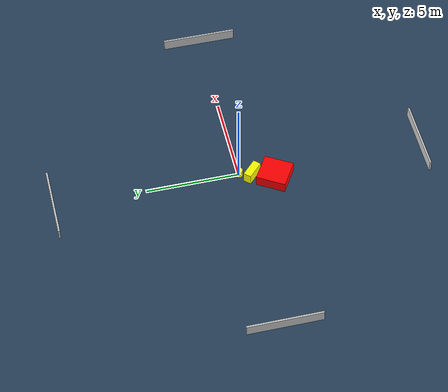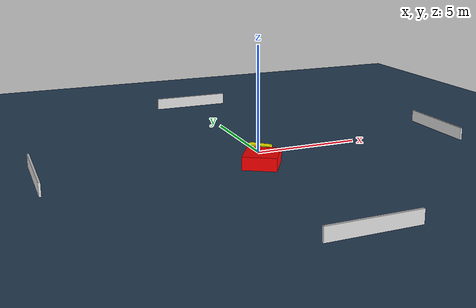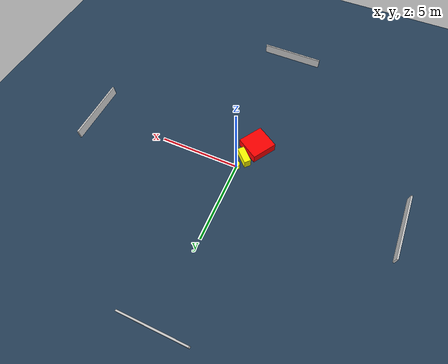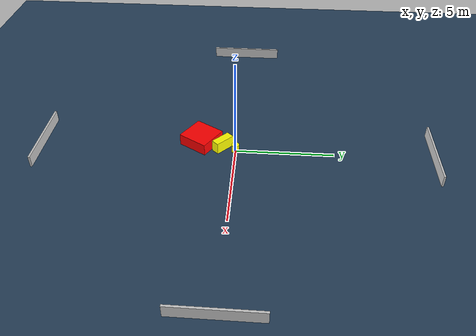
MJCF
<?xml version="1.0" ?>
<mujoco model="generated_environment">
  <option timestep="0.01" integrator="RK4" cone="elliptic"/>
  <default>
    <geom density="1"/>
  </default>
  <asset>
    <texture builtin="gradient" height="3072" name="skybox" rgb1="0.3 0.5 0.7" rgb2="0 0 0" type="skybox" width="512"/>
    <texture builtin="checker" height="300" name="groundplane" rgb1="0.2 0.3 0.4" rgb2="0.1 0.2 0.3" type="2d" width="300"/>
    <material name="groundplane" reflectance="0.2" texrepeat="5 5" texture="groundplane"/>
  </asset>
  <worldbody>
    <light dir="0 0 -1" directional="true" pos="0 0 1.5"/>
    <geom condim="3" friction="0.5 0.005 0.001" material="groundplane" name="floor" pos="0 0 0" size="0 0 0.05" type="plane"/>
    <body name="walls">
      <geom name="wall_1" condim="4" pos="-10.0 0.0 0.3" rgba="0.800000011920929 0.800000011920929 0.800000011920929 1.0" size="0.05 2.0 0.3" type="box"/>
      <geom name="wall_2" condim="4" pos="10.0 0.0 0.3" rgba="0.800000011920929 0.800000011920929 0.800000011920929 1.0" size="0.05 2.0 0.3" type="box"/>
      <geom name="wall_3" condim="4" pos="0.0 -10.0 0.3" rgba="0.800000011920929 0.800000011920929 0.800000011920929 1.0" size="2.0 0.05 0.3" type="box"/>
      <geom name="wall_4" condim="4" pos="0.0 10.0 0.3" rgba="0.800000011920929 0.800000011920929 0.800000011920929 1.0" size="2.0 0.05 0.3" type="box"/>
    </body>
    <body name="robot">
      <joint name="joint_x" type="slide" pos="0 0 0" axis="1 0 0"/>
      <joint name="joint_y" type="slide" pos="0 0 0" axis="0 1 0"/>
      <geom name="robot" type="cylinder" pos="0.0 0.0 0.2" size="0.2 0.2 0.0" mass="5.0" friction="1.0 0.005 0.0001" condim="4" rgba="1.0 1.0 0.0 1.0"/>
    </body>
    <body name="obstacle_1_movable">
      <geom name="obstacle_1_movable" condim="4" pos="-0.21056188534747003 -0.6670048370149719 0.3" euler="0 0 226.73366388487858" friction="0.0 0.005 0.001" rgba="1.0 1.0 0.0 1.0" size="0.21193796020297367 0.5273779748661176 0.3" type="box" mass="0.1"/>
      <joint type="free"/>
    </body>
    <body name="obstacle_2_static">
      <geom name="obstacle_2_static" condim="4" pos="-0.6009487519933309 -1.8133044772269342 0.3" euler="0 0 58.39877260707432" friction="0.0 0.005 0.001" rgba="1.0 0.0 0.0 1.0" size="0.7997475973043102 0.765223475985902 0.3" type="box"/>
    </body>
  </worldbody>
  <actuator>
    <motor name="actuator_x" joint="joint_x" gear="1" ctrlrange="-1 1"/>
    <motor name="actuator_y" joint="joint_y" gear="1" ctrlrange="-1 1"/>
  </actuator>
</mujoco>
